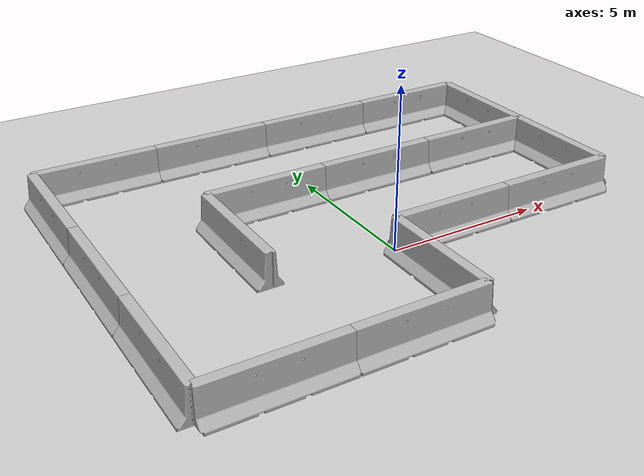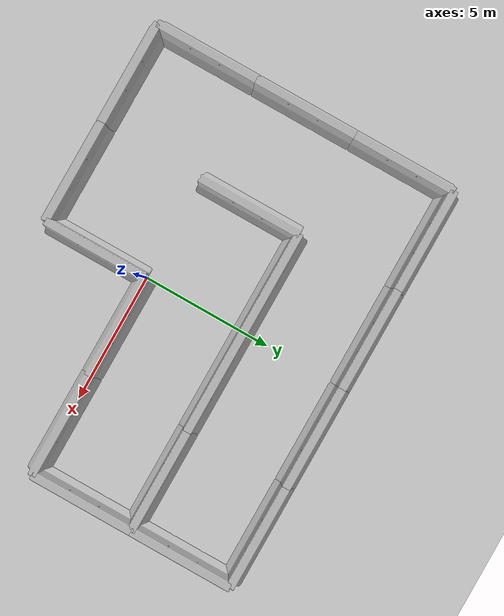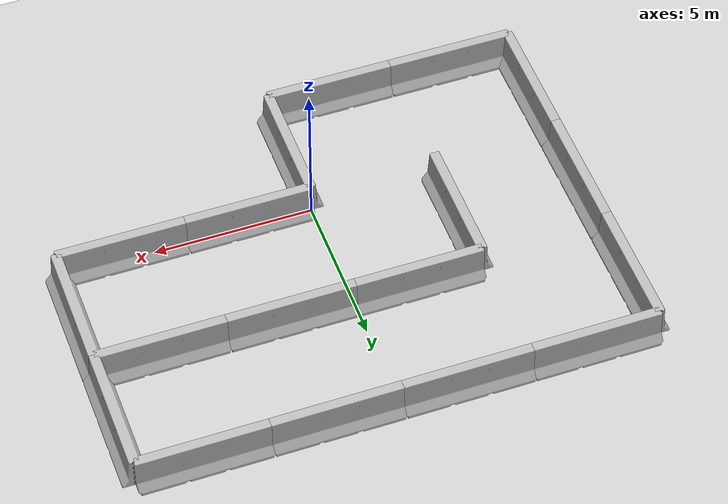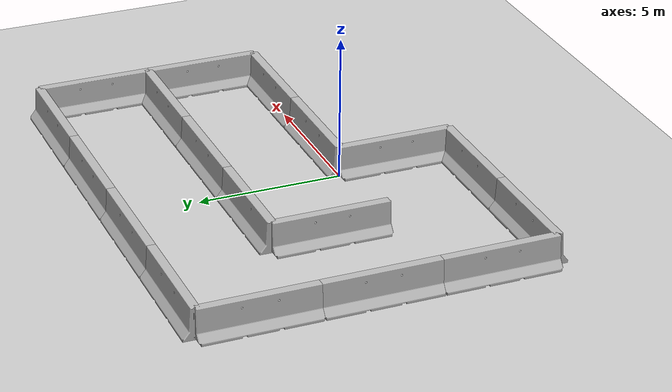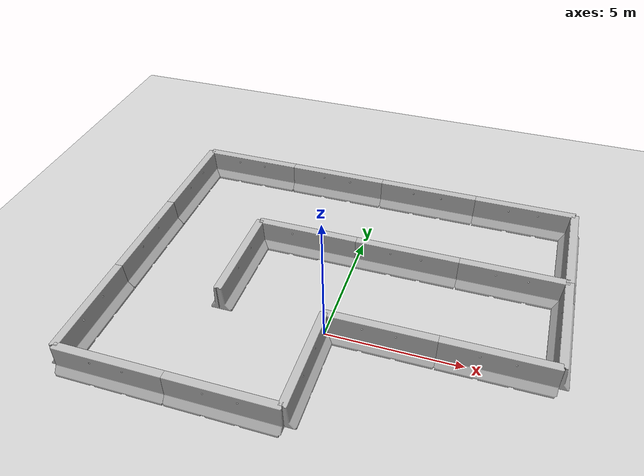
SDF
<sdf version="1.6">
 <world name="default">
  <light name="sun" type="directional">
   <pose>0 0 10 0 -0 0</pose>
   <diffuse>0.8 0.8 0.8 1</diffuse>
   <specular>0.2 0.2 0.2 1</specular>
   <attenuation>
    <range>1000</range>
    <constant>0.9</constant>
    <linear>0.01</linear>
    <quadratic>0.001</quadratic>
   </attenuation>
   <direction>-0.5 0.1 -0.9</direction>
  </light>
  <model name="ground_plane">
   <static>1</static>
   <link name="link">
    <collision name="collision">
     <geometry><plane><normal>0 0 1</normal><size>100 100</size></plane></geometry>
     <surface>
      <contact><collide_bitmask>65535</collide_bitmask></contact>
      <friction><ode><mu>100</mu><mu2>50</mu2></ode></friction>
     </surface>
    </collision>
    <visual name="visual">
     <cast_shadows>0</cast_shadows>
     <geometry><plane><normal>0 0 1</normal><size>100 100</size></plane></geometry>
     <material>
      <script><uri>file://media/materials/scripts/gazebo.material</uri><name>Gazebo/Grey</name></script>
     </material>
    </visual>
   </link>
  </model>
  <gravity>0 0 -9.8</gravity>
  <magnetic_field>6e-06 2.3e-05 -4.2e-05</magnetic_field>
  <atmosphere type="adiabatic"/>
  <physics name="default_physics" default="0" type="ode">
   <max_step_size>0.001</max_step_size>
   <real_time_factor>1</real_time_factor>
   <real_time_update_rate>1000</real_time_update_rate>
  </physics>
  <scene><ambient>0.4 0.4 0.4 1</ambient><background>0.7 0.7 0.7 1</background><shadows>1</shadows></scene>
  <spherical_coordinates>
   <surface_model>EARTH_WGS84</surface_model>
   <latitude_deg>0</latitude_deg>
   <longitude_deg>0</longitude_deg>
   <elevation>0</elevation>
   <heading_deg>0</heading_deg>
  </spherical_coordinates>
  <model name="jersey_barrier">
   <static>1</static>
   <link name="link">
    <visual name="visual">
     <geometry><mesh><uri>model://jersey_barrier/meshes/jersey_barrier.dae</uri></mesh></geometry>
    </visual>
    <collision name="upright">
     <pose>0 0 0.5715 0 -0 0</pose>
     <geometry><box><size>4.06542 0.3063 1.143</size></box></geometry>
    </collision>
    <collision name="base">
     <pose>0 0 0.032258 0 -0 0</pose>
     <geometry><box><size>4.06542 0.8107 0.064516</size></box></geometry>
    </collision>
    <collision name="base2">
     <pose>0 0 0.1 0 -0 0</pose>
     <geometry><box><size>4.06542 0.65 0.1</size></box></geometry>
    </collision>
    <collision name="base3">
     <pose>0 0 0.2 0 -0 0</pose>
     <geometry><box><size>4.06542 0.5 0.1</size></box></geometry>
    </collision>
    <collision name="left-angle">
     <pose>0 -0.224 0.2401 0.9 -0 0</pose>
     <geometry><box><size>4.06542 0.5 0.064516</size></box></geometry>
    </collision>
    <collision name="right-angle">
     <pose>0 0.224 0.2401 -0.9 0 0</pose>
     <geometry><box><size>4.06542 0.5 0.064516</size></box></geometry>
    </collision>
   </link>
   <pose>-6 -4 0 0 -0 0</pose>
  </model>
  <model name="jersey_barrier_clone_0">
   <static>1</static>
   <link name="link">
    <visual name="visual">
     <geometry><mesh><uri>model://jersey_barrier/meshes/jersey_barrier.dae</uri></mesh></geometry>
    </visual>
    <collision name="upright">
     <pose>0 0 0.5715 0 -0 0</pose>
     <geometry><box><size>4.06542 0.3063 1.143</size></box></geometry>
    </collision>
    <collision name="base">
     <pose>0 0 0.032258 0 -0 0</pose>
     <geometry><box><size>4.06542 0.8107 0.064516</size></box></geometry>
    </collision>
    <collision name="base2">
     <pose>0 0 0.1 0 -0 0</pose>
     <geometry><box><size>4.06542 0.65 0.1</size></box></geometry>
    </collision>
    <collision name="base3">
     <pose>0 0 0.2 0 -0 0</pose>
     <geometry><box><size>4.06542 0.5 0.1</size></box></geometry>
    </collision>
    <collision name="left-angle">
     <pose>0 -0.224 0.2401 0.9 -0 0</pose>
     <geometry><box><size>4.06542 0.5 0.064516</size></box></geometry>
    </collision>
    <collision name="right-angle">
     <pose>0 0.224 0.2401 -0.9 0 0</pose>
     <geometry><box><size>4.06542 0.5 0.064516</size></box></geometry>
    </collision>
   </link>
   <pose>-2 -4 0 0 -0 0</pose>
  </model>
  <model name="jersey_barrier_clone_1">
   <static>1</static>
   <link name="link">
    <visual name="visual">
     <geometry><mesh><uri>model://jersey_barrier/meshes/jersey_barrier.dae</uri></mesh></geometry>
    </visual>
    <collision name="upright">
     <pose>0 0 0.5715 0 -0 0</pose>
     <geometry><box><size>4.06542 0.3063 1.143</size></box></geometry>
    </collision>
    <collision name="base">
     <pose>0 0 0.032258 0 -0 0</pose>
     <geometry><box><size>4.06542 0.8107 0.064516</size></box></geometry>
    </collision>
    <collision name="base2">
     <pose>0 0 0.1 0 -0 0</pose>
     <geometry><box><size>4.06542 0.65 0.1</size></box></geometry>
    </collision>
    <collision name="base3">
     <pose>0 0 0.2 0 -0 0</pose>
     <geometry><box><size>4.06542 0.5 0.1</size></box></geometry>
    </collision>
    <collision name="left-angle">
     <pose>0 -0.224 0.2401 0.9 -0 0</pose>
     <geometry><box><size>4.06542 0.5 0.064516</size></box></geometry>
    </collision>
    <collision name="right-angle">
     <pose>0 0.224 0.2401 -0.9 0 0</pose>
     <geometry><box><size>4.06542 0.5 0.064516</size></box></geometry>
    </collision>
   </link>
   <pose>8 6 0 0 -0 1.5708</pose>
  </model>
  <model name="jersey_barrier_clone_2">
   <static>1</static>
   <link name="link">
    <visual name="visual">
     <geometry><mesh><uri>model://jersey_barrier/meshes/jersey_barrier.dae</uri></mesh></geometry>
    </visual>
    <collision name="upright">
     <pose>0 0 0.5715 0 -0 0</pose>
     <geometry><box><size>4.06542 0.3063 1.143</size></box></geometry>
    </collision>
    <collision name="base">
     <pose>0 0 0.032258 0 -0 0</pose>
     <geometry><box><size>4.06542 0.8107 0.064516</size></box></geometry>
    </collision>
    <collision name="base2">
     <pose>0 0 0.1 0 -0 0</pose>
     <geometry><box><size>4.06542 0.65 0.1</size></box></geometry>
    </collision>
    <collision name="base3">
     <pose>0 0 0.2 0 -0 0</pose>
     <geometry><box><size>4.06542 0.5 0.1</size></box></geometry>
    </collision>
    <collision name="left-angle">
     <pose>0 -0.224 0.2401 0.9 -0 0</pose>
     <geometry><box><size>4.06542 0.5 0.064516</size></box></geometry>
    </collision>
    <collision name="right-angle">
     <pose>0 0.224 0.2401 -0.9 0 0</pose>
     <geometry><box><size>4.06542 0.5 0.064516</size></box></geometry>
    </collision>
   </link>
   <pose>-2 4 0 0 -0 0</pose>
  </model>
  <model name="jersey_barrier_clone_3">
   <static>1</static>
   <link name="link">
    <visual name="visual">
     <geometry><mesh><uri>model://jersey_barrier/meshes/jersey_barrier.dae</uri></mesh></geometry>
    </visual>
    <collision name="upright">
     <pose>0 0 0.5715 0 -0 0</pose>
     <geometry><box><size>4.06542 0.3063 1.143</size></box></geometry>
    </collision>
    <collision name="base">
     <pose>0 0 0.032258 0 -0 0</pose>
     <geometry><box><size>4.06542 0.8107 0.064516</size></box></geometry>
    </collision>
    <collision name="base2">
     <pose>0 0 0.1 0 -0 0</pose>
     <geometry><box><size>4.06542 0.65 0.1</size></box></geometry>
    </collision>
    <collision name="base3">
     <pose>0 0 0.2 0 -0 0</pose>
     <geometry><box><size>4.06542 0.5 0.1</size></box></geometry>
    </collision>
    <collision name="left-angle">
     <pose>0 -0.224 0.2401 0.9 -0 0</pose>
     <geometry><box><size>4.06542 0.5 0.064516</size></box></geometry>
    </collision>
    <collision name="right-angle">
     <pose>0 0.224 0.2401 -0.9 0 0</pose>
     <geometry><box><size>4.06542 0.5 0.064516</size></box></geometry>
    </collision>
   </link>
   <pose>6 8 0 0 -0 0</pose>
  </model>
  <model name="jersey_barrier_clone_4">
   <static>1</static>
   <link name="link">
    <visual name="visual">
     <geometry><mesh><uri>model://jersey_barrier/meshes/jersey_barrier.dae</uri></mesh></geometry>
    </visual>
    <collision name="upright">
     <pose>0 0 0.5715 0 -0 0</pose>
     <geometry><box><size>4.06542 0.3063 1.143</size></box></geometry>
    </collision>
    <collision name="base">
     <pose>0 0 0.032258 0 -0 0</pose>
     <geometry><box><size>4.06542 0.8107 0.064516</size></box></geometry>
    </collision>
    <collision name="base2">
     <pose>0 0 0.1 0 -0 0</pose>
     <geometry><box><size>4.06542 0.65 0.1</size></box></geometry>
    </collision>
    <collision name="base3">
     <pose>0 0 0.2 0 -0 0</pose>
     <geometry><box><size>4.06542 0.5 0.1</size></box></geometry>
    </collision>
    <collision name="left-angle">
     <pose>0 -0.224 0.2401 0.9 -0 0</pose>
     <geometry><box><size>4.06542 0.5 0.064516</size></box></geometry>
    </collision>
    <collision name="right-angle">
     <pose>0 0.224 0.2401 -0.9 0 0</pose>
     <geometry><box><size>4.06542 0.5 0.064516</size></box></geometry>
    </collision>
   </link>
   <pose>2 8 0 0 -0 0</pose>
  </model>
  <model name="jersey_barrier_clone_5">
   <static>1</static>
   <link name="link">
    <visual name="visual">
     <geometry><mesh><uri>model://jersey_barrier/meshes/jersey_barrier.dae</uri></mesh></geometry>
    </visual>
    <collision name="upright">
     <pose>0 0 0.5715 0 -0 0</pose>
     <geometry><box><size>4.06542 0.3063 1.143</size></box></geometry>
    </collision>
    <collision name="base">
     <pose>0 0 0.032258 0 -0 0</pose>
     <geometry><box><size>4.06542 0.8107 0.064516</size></box></geometry>
    </collision>
    <collision name="base2">
     <pose>0 0 0.1 0 -0 0</pose>
     <geometry><box><size>4.06542 0.65 0.1</size></box></geometry>
    </collision>
    <collision name="base3">
     <pose>0 0 0.2 0 -0 0</pose>
     <geometry><box><size>4.06542 0.5 0.1</size></box></geometry>
    </collision>
    <collision name="left-angle">
     <pose>0 -0.224 0.2401 0.9 -0 0</pose>
     <geometry><box><size>4.06542 0.5 0.064516</size></box></geometry>
    </collision>
    <collision name="right-angle">
     <pose>0 0.224 0.2401 -0.9 0 0</pose>
     <geometry><box><size>4.06542 0.5 0.064516</size></box></geometry>
    </collision>
   </link>
   <pose>2 4 0 0 -0 0</pose>
  </model>
  <model name="jersey_barrier_clone_7">
   <static>1</static>
   <link name="link">
    <visual name="visual">
     <geometry><mesh><uri>model://jersey_barrier/meshes/jersey_barrier.dae</uri></mesh></geometry>
    </visual>
    <collision name="upright">
     <pose>0 0 0.5715 0 -0 0</pose>
     <geometry><box><size>4.06542 0.3063 1.143</size></box></geometry>
    </collision>
    <collision name="base">
     <pose>0 0 0.032258 0 -0 0</pose>
     <geometry><box><size>4.06542 0.8107 0.064516</size></box></geometry>
    </collision>
    <collision name="base2">
     <pose>0 0 0.1 0 -0 0</pose>
     <geometry><box><size>4.06542 0.65 0.1</size></box></geometry>
    </collision>
    <collision name="base3">
     <pose>0 0 0.2 0 -0 0</pose>
     <geometry><box><size>4.06542 0.5 0.1</size></box></geometry>
    </collision>
    <collision name="left-angle">
     <pose>0 -0.224 0.2401 0.9 -0 0</pose>
     <geometry><box><size>4.06542 0.5 0.064516</size></box></geometry>
    </collision>
    <collision name="right-angle">
     <pose>0 0.224 0.2401 -0.9 0 0</pose>
     <geometry><box><size>4.06542 0.5 0.064516</size></box></geometry>
    </collision>
   </link>
   <pose>-2 8 0 0 -0 0</pose>
  </model>
  <model name="jersey_barrier_clone_8">
   <static>1</static>
   <link name="link">
    <visual name="visual">
     <geometry><mesh><uri>model://jersey_barrier/meshes/jersey_barrier.dae</uri></mesh></geometry>
    </visual>
    <collision name="upright">
     <pose>0 0 0.5715 0 -0 0</pose>
     <geometry><box><size>4.06542 0.3063 1.143</size></box></geometry>
    </collision>
    <collision name="base">
     <pose>0 0 0.032258 0 -0 0</pose>
     <geometry><box><size>4.06542 0.8107 0.064516</size></box></geometry>
    </collision>
    <collision name="base2">
     <pose>0 0 0.1 0 -0 0</pose>
     <geometry><box><size>4.06542 0.65 0.1</size></box></geometry>
    </collision>
    <collision name="base3">
     <pose>0 0 0.2 0 -0 0</pose>
     <geometry><box><size>4.06542 0.5 0.1</size></box></geometry>
    </collision>
    <collision name="left-angle">
     <pose>0 -0.224 0.2401 0.9 -0 0</pose>
     <geometry><box><size>4.06542 0.5 0.064516</size></box></geometry>
    </collision>
    <collision name="right-angle">
     <pose>0 0.224 0.2401 -0.9 0 0</pose>
     <geometry><box><size>4.06542 0.5 0.064516</size></box></geometry>
    </collision>
   </link>
   <pose>6 4 0 0 -0 0</pose>
  </model>
  <model name="jersey_barrier_clone_10">
   <static>1</static>
   <link name="link">
    <visual name="visual">
     <geometry><mesh><uri>model://jersey_barrier/meshes/jersey_barrier.dae</uri></mesh></geometry>
    </visual>
    <collision name="upright">
     <pose>0 0 0.5715 0 -0 0</pose>
     <geometry><box><size>4.06542 0.3063 1.143</size></box></geometry>
    </collision>
    <collision name="base">
     <pose>0 0 0.032258 0 -0 0</pose>
     <geometry><box><size>4.06542 0.8107 0.064516</size></box></geometry>
    </collision>
    <collision name="base2">
     <pose>0 0 0.1 0 -0 0</pose>
     <geometry><box><size>4.06542 0.65 0.1</size></box></geometry>
    </collision>
    <collision name="base3">
     <pose>0 0 0.2 0 -0 0</pose>
     <geometry><box><size>4.06542 0.5 0.1</size></box></geometry>
    </collision>
    <collision name="left-angle">
     <pose>0 -0.224 0.2401 0.9 -0 0</pose>
     <geometry><box><size>4.06542 0.5 0.064516</size></box></geometry>
    </collision>
    <collision name="right-angle">
     <pose>0 0.224 0.2401 -0.9 0 0</pose>
     <geometry><box><size>4.06542 0.5 0.064516</size></box></geometry>
    </collision>
   </link>
   <pose>2 0 0 0 -0 0</pose>
  </model>
  <model name="jersey_barrier_clone_11">
   <static>1</static>
   <link name="link">
    <visual name="visual">
     <geometry><mesh><uri>model://jersey_barrier/meshes/jersey_barrier.dae</uri></mesh></geometry>
    </visual>
    <collision name="upright">
     <pose>0 0 0.5715 0 -0 0</pose>
     <geometry><box><size>4.06542 0.3063 1.143</size></box></geometry>
    </collision>
    <collision name="base">
     <pose>0 0 0.032258 0 -0 0</pose>
     <geometry><box><size>4.06542 0.8107 0.064516</size></box></geometry>
    </collision>
    <collision name="base2">
     <pose>0 0 0.1 0 -0 0</pose>
     <geometry><box><size>4.06542 0.65 0.1</size></box></geometry>
    </collision>
    <collision name="base3">
     <pose>0 0 0.2 0 -0 0</pose>
     <geometry><box><size>4.06542 0.5 0.1</size></box></geometry>
    </collision>
    <collision name="left-angle">
     <pose>0 -0.224 0.2401 0.9 -0 0</pose>
     <geometry><box><size>4.06542 0.5 0.064516</size></box></geometry>
    </collision>
    <collision name="right-angle">
     <pose>0 0.224 0.2401 -0.9 0 0</pose>
     <geometry><box><size>4.06542 0.5 0.064516</size></box></geometry>
    </collision>
   </link>
   <pose>-6 8 0 0 -0 0</pose>
  </model>
  <model name="jersey_barrier_clone_1_clone_0">
   <static>1</static>
   <link name="link">
    <visual name="visual">
     <geometry><mesh><uri>model://jersey_barrier/meshes/jersey_barrier.dae</uri></mesh></geometry>
    </visual>
    <collision name="upright">
     <pose>0 0 0.5715 0 -0 0</pose>
     <geometry><box><size>4.06542 0.3063 1.143</size></box></geometry>
    </collision>
    <collision name="base">
     <pose>0 0 0.032258 0 -0 0</pose>
     <geometry><box><size>4.06542 0.8107 0.064516</size></box></geometry>
    </collision>
    <collision name="base2">
     <pose>0 0 0.1 0 -0 0</pose>
     <geometry><box><size>4.06542 0.65 0.1</size></box></geometry>
    </collision>
    <collision name="base3">
     <pose>0 0 0.2 0 -0 0</pose>
     <geometry><box><size>4.06542 0.5 0.1</size></box></geometry>
    </collision>
    <collision name="left-angle">
     <pose>0 -0.224 0.2401 0.9 -0 0</pose>
     <geometry><box><size>4.06542 0.5 0.064516</size></box></geometry>
    </collision>
    <collision name="right-angle">
     <pose>0 0.224 0.2401 -0.9 0 0</pose>
     <geometry><box><size>4.06542 0.5 0.064516</size></box></geometry>
    </collision>
   </link>
   <pose>-8 -2 0 0 -0 1.5708</pose>
  </model>
  <model name="jersey_barrier_clone_1_clone_1">
   <static>1</static>
   <link name="link">
    <visual name="visual">
     <geometry><mesh><uri>model://jersey_barrier/meshes/jersey_barrier.dae</uri></mesh></geometry>
    </visual>
    <collision name="upright">
     <pose>0 0 0.5715 0 -0 0</pose>
     <geometry><box><size>4.06542 0.3063 1.143</size></box></geometry>
    </collision>
    <collision name="base">
     <pose>0 0 0.032258 0 -0 0</pose>
     <geometry><box><size>4.06542 0.8107 0.064516</size></box></geometry>
    </collision>
    <collision name="base2">
     <pose>0 0 0.1 0 -0 0</pose>
     <geometry><box><size>4.06542 0.65 0.1</size></box></geometry>
    </collision>
    <collision name="base3">
     <pose>0 0 0.2 0 -0 0</pose>
     <geometry><box><size>4.06542 0.5 0.1</size></box></geometry>
    </collision>
    <collision name="left-angle">
     <pose>0 -0.224 0.2401 0.9 -0 0</pose>
     <geometry><box><size>4.06542 0.5 0.064516</size></box></geometry>
    </collision>
    <collision name="right-angle">
     <pose>0 0.224 0.2401 -0.9 0 0</pose>
     <geometry><box><size>4.06542 0.5 0.064516</size></box></geometry>
    </collision>
   </link>
   <pose>-8 2 0 0 -0 1.5708</pose>
  </model>
  <model name="jersey_barrier_clone_1_clone_2">
   <static>1</static>
   <link name="link">
    <visual name="visual">
     <geometry><mesh><uri>model://jersey_barrier/meshes/jersey_barrier.dae</uri></mesh></geometry>
    </visual>
    <collision name="upright">
     <pose>0 0 0.5715 0 -0 0</pose>
     <geometry><box><size>4.06542 0.3063 1.143</size></box></geometry>
    </collision>
    <collision name="base">
     <pose>0 0 0.032258 0 -0 0</pose>
     <geometry><box><size>4.06542 0.8107 0.064516</size></box></geometry>
    </collision>
    <collision name="base2">
     <pose>0 0 0.1 0 -0 0</pose>
     <geometry><box><size>4.06542 0.65 0.1</size></box></geometry>
    </collision>
    <collision name="base3">
     <pose>0 0 0.2 0 -0 0</pose>
     <geometry><box><size>4.06542 0.5 0.1</size></box></geometry>
    </collision>
    <collision name="left-angle">
     <pose>0 -0.224 0.2401 0.9 -0 0</pose>
     <geometry><box><size>4.06542 0.5 0.064516</size></box></geometry>
    </collision>
    <collision name="right-angle">
     <pose>0 0.224 0.2401 -0.9 0 0</pose>
     <geometry><box><size>4.06542 0.5 0.064516</size></box></geometry>
    </collision>
   </link>
   <pose>-8 6 0 0 -0 1.5708</pose>
  </model>
  <model name="jersey_barrier_clone_1_clone_4">
   <static>1</static>
   <link name="link">
    <visual name="visual">
     <geometry><mesh><uri>model://jersey_barrier/meshes/jersey_barrier.dae</uri></mesh></geometry>
    </visual>
    <collision name="upright">
     <pose>0 0 0.5715 0 -0 0</pose>
     <geometry><box><size>4.06542 0.3063 1.143</size></box></geometry>
    </collision>
    <collision name="base">
     <pose>0 0 0.032258 0 -0 0</pose>
     <geometry><box><size>4.06542 0.8107 0.064516</size></box></geometry>
    </collision>
    <collision name="base2">
     <pose>0 0 0.1 0 -0 0</pose>
     <geometry><box><size>4.06542 0.65 0.1</size></box></geometry>
    </collision>
    <collision name="base3">
     <pose>0 0 0.2 0 -0 0</pose>
     <geometry><box><size>4.06542 0.5 0.1</size></box></geometry>
    </collision>
    <collision name="left-angle">
     <pose>0 -0.224 0.2401 0.9 -0 0</pose>
     <geometry><box><size>4.06542 0.5 0.064516</size></box></geometry>
    </collision>
    <collision name="right-angle">
     <pose>0 0.224 0.2401 -0.9 0 0</pose>
     <geometry><box><size>4.06542 0.5 0.064516</size></box></geometry>
    </collision>
   </link>
   <pose>6 0 0 0 -0 0</pose>
  </model>
  <model name="jersey_barrier_clone_1_clone_5">
   <static>1</static>
   <link name="link">
    <visual name="visual">
     <geometry><mesh><uri>model://jersey_barrier/meshes/jersey_barrier.dae</uri></mesh></geometry>
    </visual>
    <collision name="upright">
     <pose>0 0 0.5715 0 -0 0</pose>
     <geometry><box><size>4.06542 0.3063 1.143</size></box></geometry>
    </collision>
    <collision name="base">
     <pose>0 0 0.032258 0 -0 0</pose>
     <geometry><box><size>4.06542 0.8107 0.064516</size></box></geometry>
    </collision>
    <collision name="base2">
     <pose>0 0 0.1 0 -0 0</pose>
     <geometry><box><size>4.06542 0.65 0.1</size></box></geometry>
    </collision>
    <collision name="base3">
     <pose>0 0 0.2 0 -0 0</pose>
     <geometry><box><size>4.06542 0.5 0.1</size></box></geometry>
    </collision>
    <collision name="left-angle">
     <pose>0 -0.224 0.2401 0.9 -0 0</pose>
     <geometry><box><size>4.06542 0.5 0.064516</size></box></geometry>
    </collision>
    <collision name="right-angle">
     <pose>0 0.224 0.2401 -0.9 0 0</pose>
     <geometry><box><size>4.06542 0.5 0.064516</size></box></geometry>
    </collision>
   </link>
   <pose>8 2 0 0 -0 1.5708</pose>
  </model>
  <model name="jersey_barrier_clone_1_clone_5_clone">
   <static>1</static>
   <link name="link">
    <visual name="visual">
     <geometry><mesh><uri>model://jersey_barrier/meshes/jersey_barrier.dae</uri></mesh></geometry>
    </visual>
    <collision name="upright">
     <pose>0 0 0.5715 0 -0 0</pose>
     <geometry><box><size>4.06542 0.3063 1.143</size></box></geometry>
    </collision>
    <collision name="base">
     <pose>0 0 0.032258 0 -0 0</pose>
     <geometry><box><size>4.06542 0.8107 0.064516</size></box></geometry>
    </collision>
    <collision name="base2">
     <pose>0 0 0.1 0 -0 0</pose>
     <geometry><box><size>4.06542 0.65 0.1</size></box></geometry>
    </collision>
    <collision name="base3">
     <pose>0 0 0.2 0 -0 0</pose>
     <geometry><box><size>4.06542 0.5 0.1</size></box></geometry>
    </collision>
    <collision name="left-angle">
     <pose>0 -0.224 0.2401 0.9 -0 0</pose>
     <geometry><box><size>4.06542 0.5 0.064516</size></box></geometry>
    </collision>
    <collision name="right-angle">
     <pose>0 0.224 0.2401 -0.9 0 0</pose>
     <geometry><box><size>4.06542 0.5 0.064516</size></box></geometry>
    </collision>
   </link>
   <pose>-4 2 0 0 -0 1.5708</pose>
  </model>
  <model name="jersey_barrier_clone_1_clone_5_clone_0">
   <static>1</static>
   <link name="link">
    <visual name="visual">
     <geometry><mesh><uri>model://jersey_barrier/meshes/jersey_barrier.dae</uri></mesh></geometry>
    </visual>
    <collision name="upright">
     <pose>0 0 0.5715 0 -0 0</pose>
     <geometry><box><size>4.06542 0.3063 1.143</size></box></geometry>
    </collision>
    <collision name="base">
     <pose>0 0 0.032258 0 -0 0</pose>
     <geometry><box><size>4.06542 0.8107 0.064516</size></box></geometry>
    </collision>
    <collision name="base2">
     <pose>0 0 0.1 0 -0 0</pose>
     <geometry><box><size>4.06542 0.65 0.1</size></box></geometry>
    </collision>
    <collision name="base3">
     <pose>0 0 0.2 0 -0 0</pose>
     <geometry><box><size>4.06542 0.5 0.1</size></box></geometry>
    </collision>
    <collision name="left-angle">
     <pose>0 -0.224 0.2401 0.9 -0 0</pose>
     <geometry><box><size>4.06542 0.5 0.064516</size></box></geometry>
    </collision>
    <collision name="right-angle">
     <pose>0 0.224 0.2401 -0.9 0 0</pose>
     <geometry><box><size>4.06542 0.5 0.064516</size></box></geometry>
    </collision>
   </link>
   <pose>0 -2 0 0 -0 1.5708</pose>
  </model>
 </world>
</sdf>
